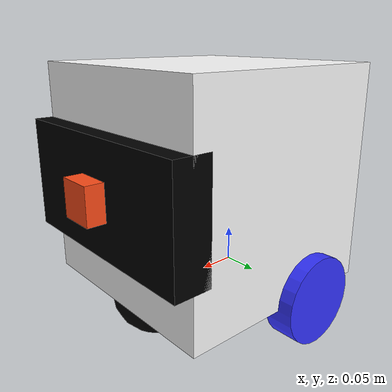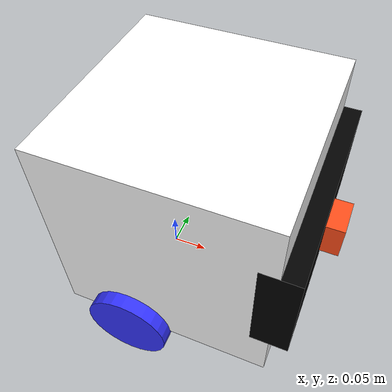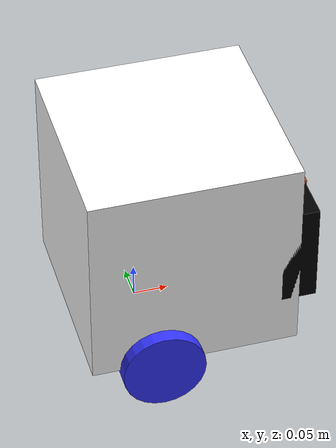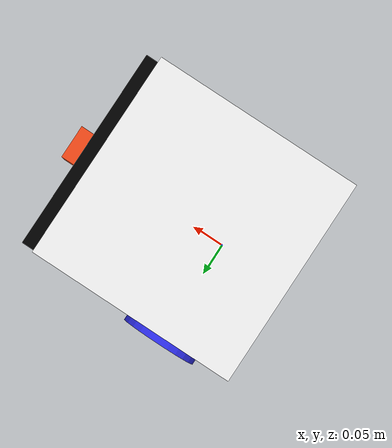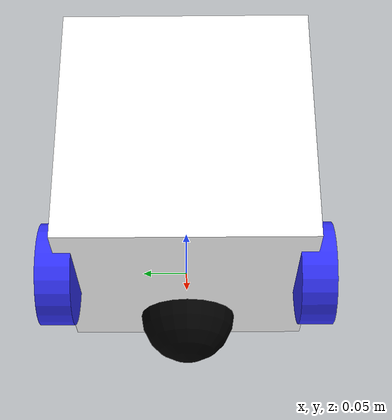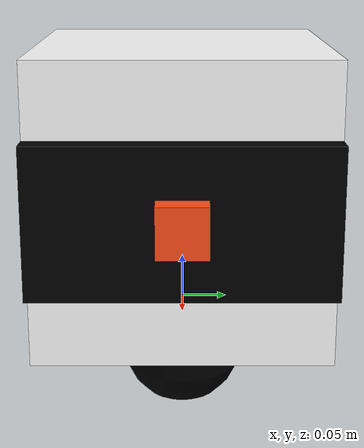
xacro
<?xml version = "1.0"?>
<robot xmlns:xacro = "http://www.ros.org/wiki/xacro"  name = "sakeths_robot">
    <!-- This is the main robot file. It contains all aspects of the robot (including the chassis, gazebo parameters, and control parameters). -->
    <!-- Including all parts of the robot in one xacro file-->
    <xacro:include filename = "robot_body.xacro" />
    <xacro:include filename = "gazebo_plugins.xacro" />
</robot>

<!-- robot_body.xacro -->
<robot xmlns:xacro = "http://www.ros.org/wiki/xacro"  name = "robot_body">

    <xacro:include filename = "inertial_macros.xacro" />
    <xacro:include filename = "robot_gazebo_parameters.xacro" />
    <xacro:include filename = "CONSTANTS.xacro" />

    <!-- NOTE: To ensure this simulation works in Gazebo, ALL components must include inertial tags! -->

    <!-- Defining colors-->
    <material name = "white">
        <color rgba = "1 1 1 1"></color>
    </material>

    <material name = "orange">
        <color rgba = "1 0.3 0.1 1"></color>
    </material>

    <material name = "blue">
        <color rgba = "0.2 0.2 1 1"></color>
    </material>

    <material name = "black">
        <color rgba = " 0 0 0 1"></color>
    </material>

    <!-- BASE LINK (default link. Consider this like a starting link for each robot)-->
    <link name = "base_link">
    </link>

    <!-- CHASSIS JOINT (connects base_link to the chassis_link) -->
    <joint name = "chassis_joint" type = "fixed">
        <parent link = "base_link" />
        <child link = "chassis_link" />
        <origin xyz = "-0.1 0 0" /> <!-- x = front, y = right, z = up-->
    </joint>

    <!-- CHASSIS LINK (defines the default position for the chassis-->
    <link name = "chassis_link">
        <visual>
             <origin xyz = "0.15 0 0.15" /> <!-- Specifies the originating point for models RELATIVE TO THE LINK-->
            <geometry>
                <box size = "${chassis_edge} ${chassis_edge} ${chassis_edge}" />
            </geometry>
            <material name = "white" />
        </visual>
        <!-- Collision aspects: exact same as the "visual" components, just without any material. -->
         <collision>
             <origin xyz = "0.15 0 0.15" /> <!-- Specifies the originating point for models RELATIVE TO THE LINK-->
            <geometry>
                <box size = "${chassis_edge} ${chassis_edge} ${chassis_edge}" />
            </geometry>
        </collision>
        <!-- Inertial tags -->
        <xacro:inertial_box mass="0.5" x="${chassis_edge}" y="${chassis_edge}" z="${chassis_edge}">
            <origin xyz="0.15 0 0.15" rpy="0 0 0"/>
        </xacro:inertial_box>
    </link>

    <!-- RIGHT WHEEL (Link and joint)-->
    <link name = "right_wheel_link">
        <visual>
            <geometry>
                <cylinder radius = "0.06" length = "0.04" />
            </geometry>
            <material name = "blue" />
        </visual>

        <collision>
            <geometry>
                <cylinder radius = "${wheel_radius}" length = "0.04" />
            </geometry>
        </collision>
        <!-- Inertial tag-->
        <xacro:inertial_cylinder mass = "0.1" length = "0.04" radius = "${wheel_radius}">
            <origin xyz="0 0 0" rpy="0 0 0"/>
        </xacro:inertial_cylinder>
    </link>

    <joint name = "right_wheel_joint" type = "continuous"> <!-- Continous joint because the wheel can rotate continously (hence, the name)-->
        <parent link = "base_link" />
        <child link = "right_wheel_link" />
        <origin xyz = "0 -0.15 0" rpy = "-${pi/2} 0 ${pi}"/>
        <axis xyz = "0 0 -1" />
        <!-- This considers aspects of a joint like torque (effort) and velocity. It is stored in a URDF and NOT a Gazebo tag. -->
        <limit effort = "0.05" velocity = "10.0" />
    </joint>

    <!-- LEFT WHEEL (Link and joint)-->
    <link name = "left_wheel_link">
        <visual>
            <geometry>
                <cylinder radius = "${wheel_radius}" length = "0.04" />
            </geometry>
            <material name = "blue" />
        </visual>

        <collision>
            <geometry>
                <cylinder radius = "${wheel_radius}" length = "0.04" />
            </geometry>
        </collision>
        <!-- Inertial tag-->
        <xacro:inertial_cylinder mass = "0.1" length = "0.04" radius = "${wheel_radius}">
            <origin xyz="0 0 0" rpy="0 0 0"/>
        </xacro:inertial_cylinder>
    </link>

    <joint name = "left_wheel_joint" type = "continuous">
        <parent link = "base_link" />
        <child link = "left_wheel_link" />
        <origin xyz = "0 0.15 0" rpy = "${pi/2} 0 ${pi}"/>
        <axis xyz = "0 0 1" />
        <!-- This considers aspects of a joint like torque (effort) and velocity. It is stored in a URDF and NOT a Gazebo tag. -->
        <limit effort = "0.05" velocity = "10.0" />
    </joint>

    <!-- CASTER WHEEL (Link and Joint)-->
    <link name = "caster_wheel_link">
        <visual>
            <geometry>
                <sphere radius = "0.06" />
            </geometry>
            <material name = "black" />
        </visual>

        <collision>
            <geometry>
                <sphere radius = "0.06" />
            </geometry>
        </collision>
        <!-- Inertial tag-->
        <xacro:inertial_sphere mass="0.1" radius = "0.06">
            <origin xyz="0 0 0" rpy="0 0 0"/>
        </xacro:inertial_sphere>
     </link>

    <joint name = "caster_wheel_joint" type = "fixed"> <!-- frictionless instead of rolling around everywhere-->
        <parent link = "chassis_link" />
        <child link = "caster_wheel_link" />
        <origin xyz = "0.24 0 0"/>
    </joint>

    <!-- Added a face/visor with an eye as a camera. -->
    <link name = "visor">
        <visual>
            <geometry>
                <box size = "0.05 0.3 0.15" />
            </geometry>
            <material name = "black" />
        </visual>
        <collision>
            <geometry>
                <box size = "0.05 0.3 0.15" />
            </geometry>
        </collision>
    </link>

    <joint name = "chassis_link_to_face" type = "fixed">
        <parent link = "chassis_link" />
        <child link = "visor" />
        <origin xyz = "${chassis_edge} 0 0.15" rpy = "0 0 ${pi}"/>
    </joint>

    <!-- Camera Link -->
    <link name = "camera_link">
        <visual>
            <origin xyz = "0.025 0 0" /> <!-- Specifies the originating point for models RELATIVE TO THE LINK-->
            <geometry>
                <box size = "0.05 0.05 0.05" />
            </geometry>
            <material name = "orange" />
        </visual>
        <collision>
            <origin xyz = "0.025 0 0" /> <!-- Specifies the originating point for models RELATIVE TO THE LINK-->
            <geometry>
                <box size = "0.05 0.05 0.05" />
            </geometry>
        </collision>
        <!-- Inertial tag-->
        <xacro:inertial_box mass="0.1" x="0.05" y="0.05" z="0.05">
            <origin xyz="0.025 0 0" rpy="0 0 0"/>
        </xacro:inertial_box>
    </link>

    <!-- Camera joint-->
    <joint name = "camera_joint" type = "fixed">
        <parent link = "visor" />
        <child link = "camera_link" />
        <origin xyz = "0 0 0" rpy = "0 0 ${pi}"/>
    </joint>

</robot>

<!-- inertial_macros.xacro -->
<!-- CREDIT: Josh Newman from Articulated Robotics -->

<robot xmlns:xacro="http://www.ros.org/wiki/xacro" >

    <!-- Specify some standard inertial calculations https://en.wikipedia.org/wiki/List_of_moments_of_inertia -->
    <!-- These make use of xacro's mathematical functionality -->

    <xacro:macro name="inertial_sphere" params="mass radius *origin">
        <inertial>
            <xacro:insert_block name="origin"/>
            <mass value="${mass}" />
            <inertia ixx="${(2/5) * mass * (radius*radius)}" ixy="0.0" ixz="0.0"
                    iyy="${(2/5) * mass * (radius*radius)}" iyz="0.0"
                    izz="${(2/5) * mass * (radius*radius)}" />
        </inertial>
    </xacro:macro>

    <xacro:macro name="inertial_box" params="mass x y z *origin">
        <inertial>
            <xacro:insert_block name="origin"/>
            <mass value="${mass}" />
            <inertia ixx="${(1/12) * mass * (y*y+z*z)}" ixy="0.0" ixz="0.0"
                    iyy="${(1/12) * mass * (x*x+z*z)}" iyz="0.0"
                    izz="${(1/12) * mass * (x*x+y*y)}" />
        </inertial>
    </xacro:macro>

    <xacro:macro name="inertial_cylinder" params="mass length radius *origin">
        <inertial>
            <xacro:insert_block name="origin"/>
            <mass value="${mass}" />
            <inertia ixx="${(1/12) * mass * (3*radius*radius + length*length)}" ixy="0.0" ixz="0.0"
                    iyy="${(1/12) * mass * (3*radius*radius + length*length)}" iyz="0.0"
                    izz="${(1/2) * mass * (radius*radius)}" />
        </inertial>
    </xacro:macro>

</robot>

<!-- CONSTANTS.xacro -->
<robot xmlns:xacro="http://www.ros.org/wiki/xacro">

    <!-- Constants for the robot, including dimensions.-->
    <xacro:property name = "chassis_edge" value = "0.3" />
    <xacro:property name = "wheel_radius" value = "0.06" />
    <xacro:property name = "wheel_separation" value = "0.3" />
    <xacro:property name = "max_velocity" value = "15.0" /> <!-- DO NOT INCREASE. OTHERWISE, THIS WILL MESS UP SIMULATION PHYSICS.-->

</robot>
